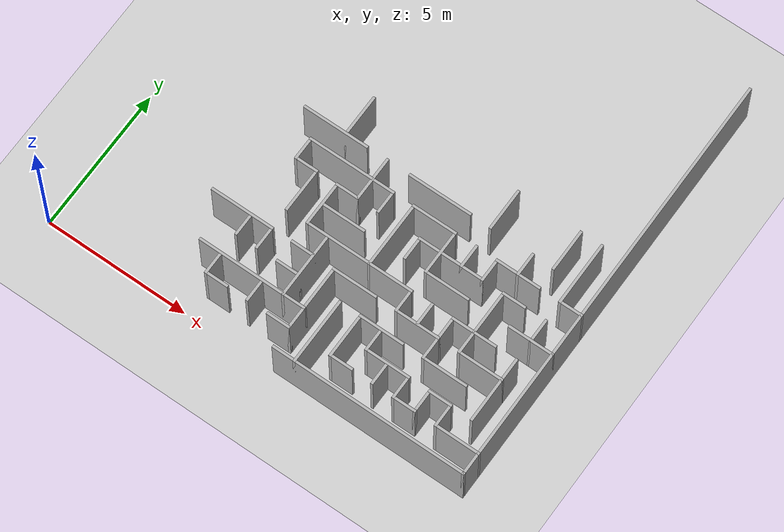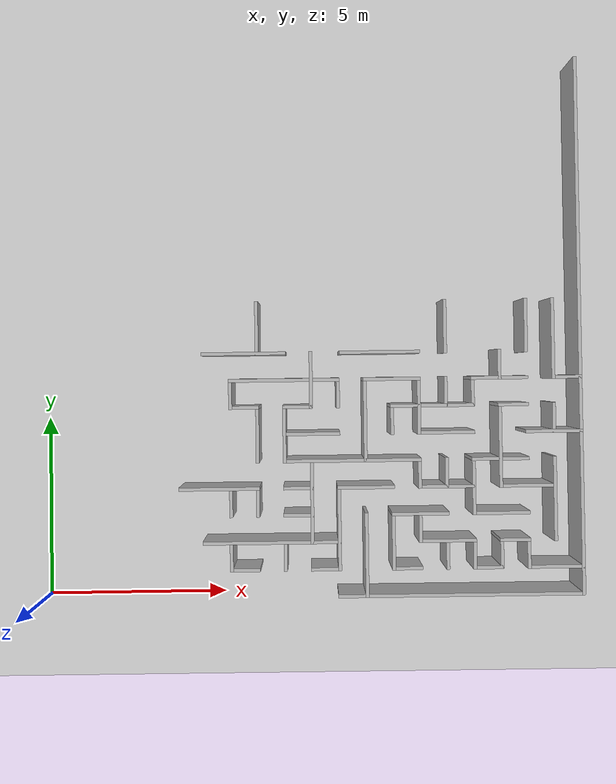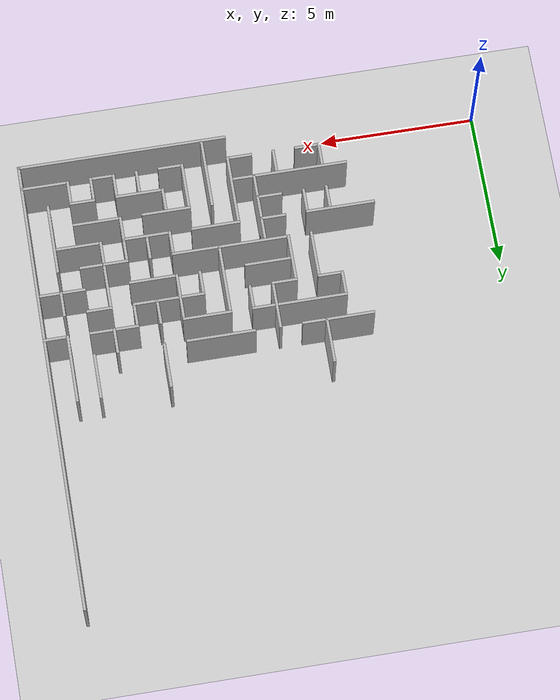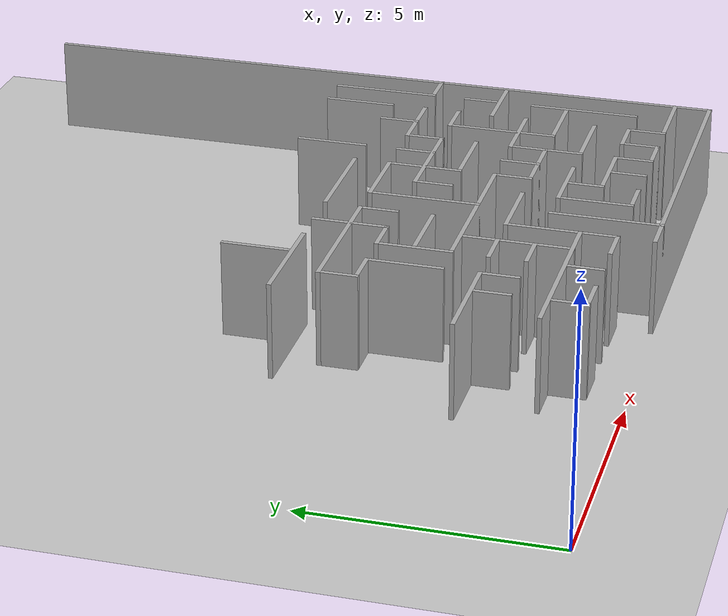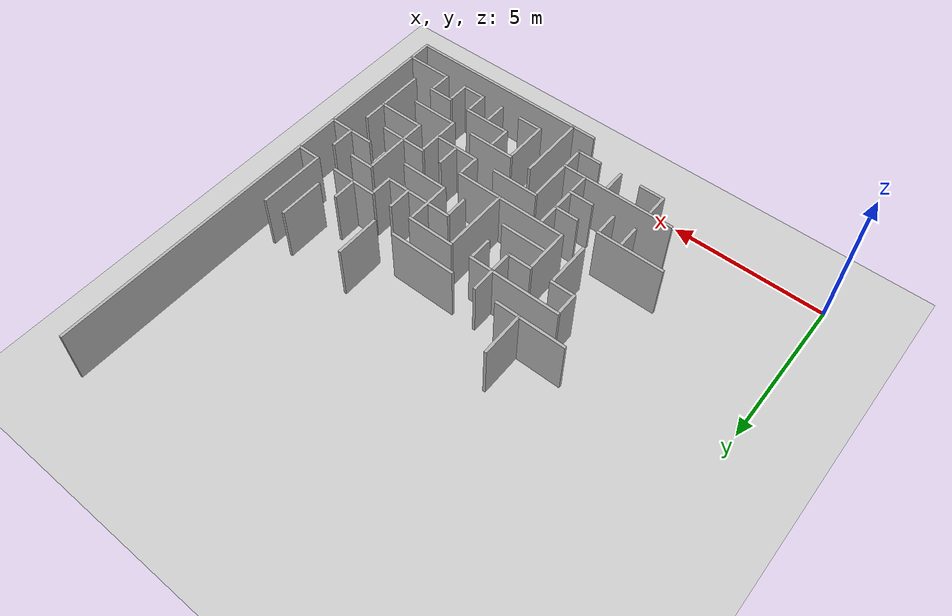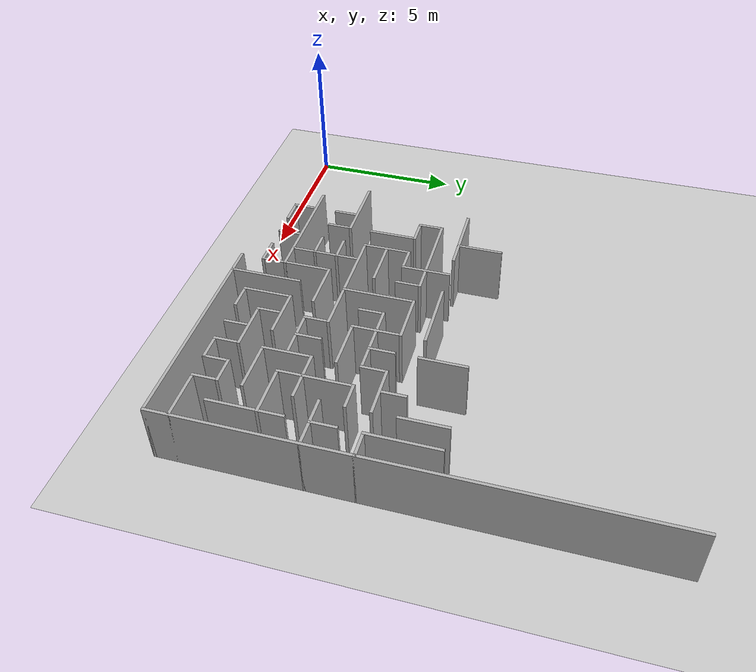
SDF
<sdf version="1.6">
 <world name="slam_world">
  <model name="ground_plane">
   <static>true</static>
   <link name="link">
    <collision name="collision">
     <geometry><plane><normal>0 0 1</normal><size>100 100</size></plane></geometry>
    </collision>
    <visual name="visual">
     <geometry><plane><normal>0 0 1</normal><size>100 100</size></plane></geometry>
     <material>
      <ambient>0.8 0.8 0.8 1</ambient>
      <diffuse>0.8 0.8 0.8 1</diffuse>
      <specular>0.8 0.8 0.8 1</specular>
     </material>
    </visual>
   </link>
  </model>
  <model name="wall_10">
   <static>true</static>
   <pose>14.907407407407408 7.453703703703704 1.0 0 0 0</pose>
   <link name="link">
    <collision name="collision">
     <geometry><box><size>0.0925925925925926 14.814814814814817 2.0</size></box></geometry>
    </collision>
    <visual name="visual">
     <geometry><box><size>0.0925925925925926 14.814814814814817 2.0</size></box></geometry>
     <material><ambient>0.5 0.5 0.5 1</ambient><diffuse>0.7 0.7 0.7 1</diffuse></material>
    </visual>
   </link>
  </model>
  <model name="wall_101">
   <static>true</static>
   <pose>6.018518518518519 7.453703703703704 1.0 0 0 0</pose>
   <link name="link">
    <collision name="collision">
     <geometry><box><size>0.0925925925925926 1.4814814814814816 2.0</size></box></geometry>
    </collision>
    <visual name="visual">
     <geometry><box><size>0.0925925925925926 1.4814814814814816 2.0</size></box></geometry>
     <material><ambient>0.5 0.5 0.5 1</ambient><diffuse>0.7 0.7 0.7 1</diffuse></material>
    </visual>
   </link>
  </model>
  <model name="wall_102">
   <static>true</static>
   <pose>11.203703703703704 7.453703703703704 1.0 0 0 0</pose>
   <link name="link">
    <collision name="collision">
     <geometry><box><size>0.0925925925925926 1.4814814814814816 2.0</size></box></geometry>
    </collision>
    <visual name="visual">
     <geometry><box><size>0.0925925925925926 1.4814814814814816 2.0</size></box></geometry>
     <material><ambient>0.5 0.5 0.5 1</ambient><diffuse>0.7 0.7 0.7 1</diffuse></material>
    </visual>
   </link>
  </model>
  <model name="wall_103">
   <static>true</static>
   <pose>13.425925925925927 7.453703703703704 1.0 0 0 0</pose>
   <link name="link">
    <collision name="collision">
     <geometry><box><size>0.0925925925925926 1.4814814814814816 2.0</size></box></geometry>
    </collision>
    <visual name="visual">
     <geometry><box><size>0.0925925925925926 1.4814814814814816 2.0</size></box></geometry>
     <material><ambient>0.5 0.5 0.5 1</ambient><diffuse>0.7 0.7 0.7 1</diffuse></material>
    </visual>
   </link>
  </model>
  <model name="wall_104">
   <static>true</static>
   <pose>14.166666666666668 7.083333333333334 1.0 0 0 0</pose>
   <link name="link">
    <collision name="collision">
     <geometry><box><size>0.0925925925925926 2.2222222222222223 2.0</size></box></geometry>
    </collision>
    <visual name="visual">
     <geometry><box><size>0.0925925925925926 2.2222222222222223 2.0</size></box></geometry>
     <material><ambient>0.5 0.5 0.5 1</ambient><diffuse>0.7 0.7 0.7 1</diffuse></material>
    </visual>
   </link>
  </model>
  <model name="wall_113">
   <static>true</static>
   <pose>5.648148148148149 6.7592592592592595 1.0 0 0 0</pose>
   <link name="link">
    <collision name="collision">
     <geometry><box><size>2.314814814814815 0.0925925925925926 2.0</size></box></geometry>
    </collision>
    <visual name="visual">
     <geometry><box><size>2.314814814814815 0.0925925925925926 2.0</size></box></geometry>
     <material><ambient>0.5 0.5 0.5 1</ambient><diffuse>0.7 0.7 0.7 1</diffuse></material>
    </visual>
   </link>
  </model>
  <model name="wall_114">
   <static>true</static>
   <pose>7.500000000000001 6.018518518518519 1.0 0 0 0</pose>
   <link name="link">
    <collision name="collision">
     <geometry><box><size>0.0925925925925926 1.5740740740740742 2.0</size></box></geometry>
    </collision>
    <visual name="visual">
     <geometry><box><size>0.0925925925925926 1.5740740740740742 2.0</size></box></geometry>
     <material><ambient>0.5 0.5 0.5 1</ambient><diffuse>0.7 0.7 0.7 1</diffuse></material>
    </visual>
   </link>
  </model>
  <model name="wall_115">
   <static>true</static>
   <pose>9.398148148148149 6.7592592592592595 1.0 0 0 0</pose>
   <link name="link">
    <collision name="collision">
     <geometry><box><size>2.2222222222222223 0.0925925925925926 2.0</size></box></geometry>
    </collision>
    <visual name="visual">
     <geometry><box><size>2.2222222222222223 0.0925925925925926 2.0</size></box></geometry>
     <material><ambient>0.5 0.5 0.5 1</ambient><diffuse>0.7 0.7 0.7 1</diffuse></material>
    </visual>
   </link>
  </model>
  <model name="wall_116">
   <static>true</static>
   <pose>12.685185185185187 6.388888888888889 1.0 0 0 0</pose>
   <link name="link">
    <collision name="collision">
     <geometry><box><size>0.0925925925925926 0.8333333333333334 2.0</size></box></geometry>
    </collision>
    <visual name="visual">
     <geometry><box><size>0.0925925925925926 0.8333333333333334 2.0</size></box></geometry>
     <material><ambient>0.5 0.5 0.5 1</ambient><diffuse>0.7 0.7 0.7 1</diffuse></material>
    </visual>
   </link>
  </model>
  <model name="wall_121">
   <static>true</static>
   <pose>6.7592592592592595 6.018518518518519 1.0 0 0 0</pose>
   <link name="link">
    <collision name="collision">
     <geometry><box><size>3.055555555555556 0.0925925925925926 2.0</size></box></geometry>
    </collision>
    <visual name="visual">
     <geometry><box><size>3.055555555555556 0.0925925925925926 2.0</size></box></geometry>
     <material><ambient>0.5 0.5 0.5 1</ambient><diffuse>0.7 0.7 0.7 1</diffuse></material>
    </visual>
   </link>
  </model>
  <model name="wall_122">
   <static>true</static>
   <pose>9.722222222222223 6.018518518518519 1.0 0 0 0</pose>
   <link name="link">
    <collision name="collision">
     <geometry><box><size>1.5740740740740742 0.0925925925925926 2.0</size></box></geometry>
    </collision>
    <visual name="visual">
     <geometry><box><size>1.5740740740740742 0.0925925925925926 2.0</size></box></geometry>
     <material><ambient>0.5 0.5 0.5 1</ambient><diffuse>0.7 0.7 0.7 1</diffuse></material>
    </visual>
   </link>
  </model>
  <model name="wall_123">
   <static>true</static>
   <pose>11.203703703703704 5.648148148148149 1.0 0 0 0</pose>
   <link name="link">
    <collision name="collision">
     <geometry><box><size>0.0925925925925926 0.8333333333333334 2.0</size></box></geometry>
    </collision>
    <visual name="visual">
     <geometry><box><size>0.0925925925925926 0.8333333333333334 2.0</size></box></geometry>
     <material><ambient>0.5 0.5 0.5 1</ambient><diffuse>0.7 0.7 0.7 1</diffuse></material>
    </visual>
   </link>
  </model>
  <model name="wall_124">
   <static>true</static>
   <pose>12.685185185185187 6.018518518518519 1.0 0 0 0</pose>
   <link name="link">
    <collision name="collision">
     <geometry><box><size>1.5740740740740742 0.0925925925925926 2.0</size></box></geometry>
    </collision>
    <visual name="visual">
     <geometry><box><size>1.5740740740740742 0.0925925925925926 2.0</size></box></geometry>
     <material><ambient>0.5 0.5 0.5 1</ambient><diffuse>0.7 0.7 0.7 1</diffuse></material>
    </visual>
   </link>
  </model>
  <model name="wall_125">
   <static>true</static>
   <pose>14.583333333333334 6.018518518518519 1.0 0 0 0</pose>
   <link name="link">
    <collision name="collision">
     <geometry><box><size>0.7407407407407408 0.0925925925925926 2.0</size></box></geometry>
    </collision>
    <visual name="visual">
     <geometry><box><size>0.7407407407407408 0.0925925925925926 2.0</size></box></geometry>
     <material><ambient>0.5 0.5 0.5 1</ambient><diffuse>0.7 0.7 0.7 1</diffuse></material>
    </visual>
   </link>
  </model>
  <model name="wall_127">
   <static>true</static>
   <pose>5.277777777777779 5.601851851851852 1.0 0 0 0</pose>
   <link name="link">
    <collision name="collision">
     <geometry><box><size>0.0925925925925926 0.7407407407407408 2.0</size></box></geometry>
    </collision>
    <visual name="visual">
     <geometry><box><size>0.0925925925925926 0.7407407407407408 2.0</size></box></geometry>
     <material><ambient>0.5 0.5 0.5 1</ambient><diffuse>0.7 0.7 0.7 1</diffuse></material>
    </visual>
   </link>
  </model>
  <model name="wall_128">
   <static>true</static>
   <pose>8.240740740740742 5.601851851851852 1.0 0 0 0</pose>
   <link name="link">
    <collision name="collision">
     <geometry><box><size>0.0925925925925926 0.7407407407407408 2.0</size></box></geometry>
    </collision>
    <visual name="visual">
     <geometry><box><size>0.0925925925925926 0.7407407407407408 2.0</size></box></geometry>
     <material><ambient>0.5 0.5 0.5 1</ambient><diffuse>0.7 0.7 0.7 1</diffuse></material>
    </visual>
   </link>
  </model>
  <model name="wall_129">
   <static>true</static>
   <pose>8.981481481481483 4.861111111111112 1.0 0 0 0</pose>
   <link name="link">
    <collision name="collision">
     <geometry><box><size>0.0925925925925926 2.2222222222222223 2.0</size></box></geometry>
    </collision>
    <visual name="visual">
     <geometry><box><size>0.0925925925925926 2.2222222222222223 2.0</size></box></geometry>
     <material><ambient>0.5 0.5 0.5 1</ambient><diffuse>0.7 0.7 0.7 1</diffuse></material>
    </visual>
   </link>
  </model>
  <model name="wall_130">
   <static>true</static>
   <pose>10.462962962962964 5.231481481481482 1.0 0 0 0</pose>
   <link name="link">
    <collision name="collision">
     <geometry><box><size>0.0925925925925926 1.4814814814814816 2.0</size></box></geometry>
    </collision>
    <visual name="visual">
     <geometry><box><size>0.0925925925925926 1.4814814814814816 2.0</size></box></geometry>
     <material><ambient>0.5 0.5 0.5 1</ambient><diffuse>0.7 0.7 0.7 1</diffuse></material>
    </visual>
   </link>
  </model>
  <model name="wall_131">
   <static>true</static>
   <pose>11.944444444444446 5.601851851851852 1.0 0 0 0</pose>
   <link name="link">
    <collision name="collision">
     <geometry><box><size>0.0925925925925926 0.7407407407407408 2.0</size></box></geometry>
    </collision>
    <visual name="visual">
     <geometry><box><size>0.0925925925925926 0.7407407407407408 2.0</size></box></geometry>
     <material><ambient>0.5 0.5 0.5 1</ambient><diffuse>0.7 0.7 0.7 1</diffuse></material>
    </visual>
   </link>
  </model>
  <model name="wall_135">
   <static>true</static>
   <pose>5.694444444444445 5.277777777777779 1.0 0 0 0</pose>
   <link name="link">
    <collision name="collision">
     <geometry><box><size>0.7407407407407408 0.0925925925925926 2.0</size></box></geometry>
    </collision>
    <visual name="visual">
     <geometry><box><size>0.7407407407407408 0.0925925925925926 2.0</size></box></geometry>
     <material><ambient>0.5 0.5 0.5 1</ambient><diffuse>0.7 0.7 0.7 1</diffuse></material>
    </visual>
   </link>
  </model>
  <model name="wall_136">
   <static>true</static>
   <pose>7.129629629629631 5.277777777777779 1.0 0 0 0</pose>
   <link name="link">
    <collision name="collision">
     <geometry><box><size>0.8333333333333334 0.0925925925925926 2.0</size></box></geometry>
    </collision>
    <visual name="visual">
     <geometry><box><size>0.8333333333333334 0.0925925925925926 2.0</size></box></geometry>
     <material><ambient>0.5 0.5 0.5 1</ambient><diffuse>0.7 0.7 0.7 1</diffuse></material>
    </visual>
   </link>
  </model>
  <model name="wall_137">
   <static>true</static>
   <pose>10.833333333333334 5.277777777777779 1.0 0 0 0</pose>
   <link name="link">
    <collision name="collision">
     <geometry><box><size>2.314814814814815 0.0925925925925926 2.0</size></box></geometry>
    </collision>
    <visual name="visual">
     <geometry><box><size>2.314814814814815 0.0925925925925926 2.0</size></box></geometry>
     <material><ambient>0.5 0.5 0.5 1</ambient><diffuse>0.7 0.7 0.7 1</diffuse></material>
    </visual>
   </link>
  </model>
  <model name="wall_138">
   <static>true</static>
   <pose>13.055555555555557 5.277777777777779 1.0 0 0 0</pose>
   <link name="link">
    <collision name="collision">
     <geometry><box><size>0.8333333333333334 0.0925925925925926 2.0</size></box></geometry>
    </collision>
    <visual name="visual">
     <geometry><box><size>0.8333333333333334 0.0925925925925926 2.0</size></box></geometry>
     <material><ambient>0.5 0.5 0.5 1</ambient><diffuse>0.7 0.7 0.7 1</diffuse></material>
    </visual>
   </link>
  </model>
  <model name="wall_139">
   <static>true</static>
   <pose>14.166666666666668 4.907407407407407 1.0 0 0 0</pose>
   <link name="link">
    <collision name="collision">
     <geometry><box><size>0.0925925925925926 0.8333333333333334 2.0</size></box></geometry>
    </collision>
    <visual name="visual">
     <geometry><box><size>0.0925925925925926 0.8333333333333334 2.0</size></box></geometry>
     <material><ambient>0.5 0.5 0.5 1</ambient><diffuse>0.7 0.7 0.7 1</diffuse></material>
    </visual>
   </link>
  </model>
  <model name="wall_141">
   <static>true</static>
   <pose>6.018518518518519 4.490740740740741 1.0 0 0 0</pose>
   <link name="link">
    <collision name="collision">
     <geometry><box><size>0.0925925925925926 1.4814814814814816 2.0</size></box></geometry>
    </collision>
    <visual name="visual">
     <geometry><box><size>0.0925925925925926 1.4814814814814816 2.0</size></box></geometry>
     <material><ambient>0.5 0.5 0.5 1</ambient><diffuse>0.7 0.7 0.7 1</diffuse></material>
    </visual>
   </link>
  </model>
  <model name="wall_142">
   <static>true</static>
   <pose>6.7592592592592595 4.490740740740741 1.0 0 0 0</pose>
   <link name="link">
    <collision name="collision">
     <geometry><box><size>0.0925925925925926 1.4814814814814816 2.0</size></box></geometry>
    </collision>
    <visual name="visual">
     <geometry><box><size>0.0925925925925926 1.4814814814814816 2.0</size></box></geometry>
     <material><ambient>0.5 0.5 0.5 1</ambient><diffuse>0.7 0.7 0.7 1</diffuse></material>
    </visual>
   </link>
  </model>
  <model name="wall_143">
   <static>true</static>
   <pose>9.722222222222223 4.861111111111112 1.0 0 0 0</pose>
   <link name="link">
    <collision name="collision">
     <geometry><box><size>0.0925925925925926 0.7407407407407408 2.0</size></box></geometry>
    </collision>
    <visual name="visual">
     <geometry><box><size>0.0925925925925926 0.7407407407407408 2.0</size></box></geometry>
     <material><ambient>0.5 0.5 0.5 1</ambient><diffuse>0.7 0.7 0.7 1</diffuse></material>
    </visual>
   </link>
  </model>
  <model name="wall_144">
   <static>true</static>
   <pose>12.685185185185187 4.120370370370371 1.0 0 0 0</pose>
   <link name="link">
    <collision name="collision">
     <geometry><box><size>0.0925925925925926 2.2222222222222223 2.0</size></box></geometry>
    </collision>
    <visual name="visual">
     <geometry><box><size>0.0925925925925926 2.2222222222222223 2.0</size></box></geometry>
     <material><ambient>0.5 0.5 0.5 1</ambient><diffuse>0.7 0.7 0.7 1</diffuse></material>
    </visual>
   </link>
  </model>
  <model name="wall_148">
   <static>true</static>
   <pose>7.546296296296297 4.537037037037037 1.0 0 0 0</pose>
   <link name="link">
    <collision name="collision">
     <geometry><box><size>1.4814814814814816 0.0925925925925926 2.0</size></box></geometry>
    </collision>
    <visual name="visual">
     <geometry><box><size>1.4814814814814816 0.0925925925925926 2.0</size></box></geometry>
     <material><ambient>0.5 0.5 0.5 1</ambient><diffuse>0.7 0.7 0.7 1</diffuse></material>
    </visual>
   </link>
  </model>
  <model name="wall_149">
   <static>true</static>
   <pose>11.250000000000002 4.537037037037037 1.0 0 0 0</pose>
   <link name="link">
    <collision name="collision">
     <geometry><box><size>1.4814814814814816 0.0925925925925926 2.0</size></box></geometry>
    </collision>
    <visual name="visual">
     <geometry><box><size>1.4814814814814816 0.0925925925925926 2.0</size></box></geometry>
     <material><ambient>0.5 0.5 0.5 1</ambient><diffuse>0.7 0.7 0.7 1</diffuse></material>
    </visual>
   </link>
  </model>
  <model name="wall_150">
   <static>true</static>
   <pose>14.166666666666668 4.537037037037037 1.0 0 0 0</pose>
   <link name="link">
    <collision name="collision">
     <geometry><box><size>1.5740740740740742 0.0925925925925926 2.0</size></box></geometry>
    </collision>
    <visual name="visual">
     <geometry><box><size>1.5740740740740742 0.0925925925925926 2.0</size></box></geometry>
     <material><ambient>0.5 0.5 0.5 1</ambient><diffuse>0.7 0.7 0.7 1</diffuse></material>
    </visual>
   </link>
  </model>
  <model name="wall_153">
   <static>true</static>
   <pose>8.657407407407408 3.7962962962962967 1.0 0 0 0</pose>
   <link name="link">
    <collision name="collision">
     <geometry><box><size>3.703703703703704 0.0925925925925926 2.0</size></box></geometry>
    </collision>
    <visual name="visual">
     <geometry><box><size>3.703703703703704 0.0925925925925926 2.0</size></box></geometry>
     <material><ambient>0.5 0.5 0.5 1</ambient><diffuse>0.7 0.7 0.7 1</diffuse></material>
    </visual>
   </link>
  </model>
  <model name="wall_154">
   <static>true</static>
   <pose>11.203703703703704 3.425925925925926 1.0 0 0 0</pose>
   <link name="link">
    <collision name="collision">
     <geometry><box><size>0.0925925925925926 0.8333333333333334 2.0</size></box></geometry>
    </collision>
    <visual name="visual">
     <geometry><box><size>0.0925925925925926 0.8333333333333334 2.0</size></box></geometry>
     <material><ambient>0.5 0.5 0.5 1</ambient><diffuse>0.7 0.7 0.7 1</diffuse></material>
    </visual>
   </link>
  </model>
  <model name="wall_155">
   <static>true</static>
   <pose>12.685185185185187 3.7962962962962967 1.0 0 0 0</pose>
   <link name="link">
    <collision name="collision">
     <geometry><box><size>1.5740740740740742 0.0925925925925926 2.0</size></box></geometry>
    </collision>
    <visual name="visual">
     <geometry><box><size>1.5740740740740742 0.0925925925925926 2.0</size></box></geometry>
     <material><ambient>0.5 0.5 0.5 1</ambient><diffuse>0.7 0.7 0.7 1</diffuse></material>
    </visual>
   </link>
  </model>
  <model name="wall_156">
   <static>true</static>
   <pose>14.166666666666668 2.6851851851851856 1.0 0 0 0</pose>
   <link name="link">
    <collision name="collision">
     <geometry><box><size>0.0925925925925926 2.314814814814815 2.0</size></box></geometry>
    </collision>
    <visual name="visual">
     <geometry><box><size>0.0925925925925926 2.314814814814815 2.0</size></box></geometry>
     <material><ambient>0.5 0.5 0.5 1</ambient><diffuse>0.7 0.7 0.7 1</diffuse></material>
    </visual>
   </link>
  </model>
  <model name="wall_158">
   <static>true</static>
   <pose>7.500000000000001 2.6388888888888893 1.0 0 0 0</pose>
   <link name="link">
    <collision name="collision">
     <geometry><box><size>0.0925925925925926 2.2222222222222223 2.0</size></box></geometry>
    </collision>
    <visual name="visual">
     <geometry><box><size>0.0925925925925926 2.2222222222222223 2.0</size></box></geometry>
     <material><ambient>0.5 0.5 0.5 1</ambient><diffuse>0.7 0.7 0.7 1</diffuse></material>
    </visual>
   </link>
  </model>
  <model name="wall_159">
   <static>true</static>
   <pose>10.462962962962964 3.3796296296296298 1.0 0 0 0</pose>
   <link name="link">
    <collision name="collision">
     <geometry><box><size>0.0925925925925926 0.7407407407407408 2.0</size></box></geometry>
    </collision>
    <visual name="visual">
     <geometry><box><size>0.0925925925925926 0.7407407407407408 2.0</size></box></geometry>
     <material><ambient>0.5 0.5 0.5 1</ambient><diffuse>0.7 0.7 0.7 1</diffuse></material>
    </visual>
   </link>
  </model>
  <model name="wall_160">
   <static>true</static>
   <pose>11.944444444444446 3.0092592592592595 1.0 0 0 0</pose>
   <link name="link">
    <collision name="collision">
     <geometry><box><size>0.0925925925925926 1.4814814814814816 2.0</size></box></geometry>
    </collision>
    <visual name="visual">
     <geometry><box><size>0.0925925925925926 1.4814814814814816 2.0</size></box></geometry>
     <material><ambient>0.5 0.5 0.5 1</ambient><diffuse>0.7 0.7 0.7 1</diffuse></material>
    </visual>
   </link>
  </model>
  <model name="wall_163">
   <static>true</static>
   <pose>4.953703703703704 3.055555555555556 1.0 0 0 0</pose>
   <link name="link">
    <collision name="collision">
     <geometry><box><size>2.2222222222222223 0.0925925925925926 2.0</size></box></geometry>
    </collision>
    <visual name="visual">
     <geometry><box><size>2.2222222222222223 0.0925925925925926 2.0</size></box></geometry>
     <material><ambient>0.5 0.5 0.5 1</ambient><diffuse>0.7 0.7 0.7 1</diffuse></material>
    </visual>
   </link>
  </model>
  <model name="wall_164">
   <static>true</static>
   <pose>7.129629629629631 3.055555555555556 1.0 0 0 0</pose>
   <link name="link">
    <collision name="collision">
     <geometry><box><size>0.8333333333333334 0.0925925925925926 2.0</size></box></geometry>
    </collision>
    <visual name="visual">
     <geometry><box><size>0.8333333333333334 0.0925925925925926 2.0</size></box></geometry>
     <material><ambient>0.5 0.5 0.5 1</ambient><diffuse>0.7 0.7 0.7 1</diffuse></material>
    </visual>
   </link>
  </model>
  <model name="wall_165">
   <static>true</static>
   <pose>8.981481481481483 3.055555555555556 1.0 0 0 0</pose>
   <link name="link">
    <collision name="collision">
     <geometry><box><size>1.5740740740740742 0.0925925925925926 2.0</size></box></geometry>
    </collision>
    <visual name="visual">
     <geometry><box><size>1.5740740740740742 0.0925925925925926 2.0</size></box></geometry>
     <material><ambient>0.5 0.5 0.5 1</ambient><diffuse>0.7 0.7 0.7 1</diffuse></material>
    </visual>
   </link>
  </model>
  <model name="wall_166">
   <static>true</static>
   <pose>11.250000000000002 3.055555555555556 1.0 0 0 0</pose>
   <link name="link">
    <collision name="collision">
     <geometry><box><size>1.4814814814814816 0.0925925925925926 2.0</size></box></geometry>
    </collision>
    <visual name="visual">
     <geometry><box><size>1.4814814814814816 0.0925925925925926 2.0</size></box></geometry>
     <material><ambient>0.5 0.5 0.5 1</ambient><diffuse>0.7 0.7 0.7 1</diffuse></material>
    </visual>
   </link>
  </model>
  <model name="wall_167">
   <static>true</static>
   <pose>13.472222222222223 3.055555555555556 1.0 0 0 0</pose>
   <link name="link">
    <collision name="collision">
     <geometry><box><size>1.4814814814814816 0.0925925925925926 2.0</size></box></geometry>
    </collision>
    <visual name="visual">
     <geometry><box><size>1.4814814814814816 0.0925925925925926 2.0</size></box></geometry>
     <material><ambient>0.5 0.5 0.5 1</ambient><diffuse>0.7 0.7 0.7 1</diffuse></material>
    </visual>
   </link>
  </model>
  <model name="wall_168">
   <static>true</static>
   <pose>5.277777777777779 2.6388888888888893 1.0 0 0 0</pose>
   <link name="link">
    <collision name="collision">
     <geometry><box><size>0.0925925925925926 0.7407407407407408 2.0</size></box></geometry>
    </collision>
    <visual name="visual">
     <geometry><box><size>0.0925925925925926 0.7407407407407408 2.0</size></box></geometry>
     <material><ambient>0.5 0.5 0.5 1</ambient><diffuse>0.7 0.7 0.7 1</diffuse></material>
    </visual>
   </link>
  </model>
  <model name="wall_169">
   <static>true</static>
   <pose>6.018518518518519 2.6388888888888893 1.0 0 0 0</pose>
   <link name="link">
    <collision name="collision">
     <geometry><box><size>0.0925925925925926 0.7407407407407408 2.0</size></box></geometry>
    </collision>
    <visual name="visual">
     <geometry><box><size>0.0925925925925926 0.7407407407407408 2.0</size></box></geometry>
     <material><ambient>0.5 0.5 0.5 1</ambient><diffuse>0.7 0.7 0.7 1</diffuse></material>
    </visual>
   </link>
  </model>
  <model name="wall_170">
   <static>true</static>
   <pose>8.240740740740742 1.8981481481481484 1.0 0 0 0</pose>
   <link name="link">
    <collision name="collision">
     <geometry><box><size>0.0925925925925926 2.2222222222222223 2.0</size></box></geometry>
    </collision>
    <visual name="visual">
     <geometry><box><size>0.0925925925925926 2.2222222222222223 2.0</size></box></geometry>
     <material><ambient>0.5 0.5 0.5 1</ambient><diffuse>0.7 0.7 0.7 1</diffuse></material>
    </visual>
   </link>
  </model>
  <model name="wall_173">
   <static>true</static>
   <pose>7.129629629629631 2.314814814814815 1.0 0 0 0</pose>
   <link name="link">
    <collision name="collision">
     <geometry><box><size>0.8333333333333334 0.0925925925925926 2.0</size></box></geometry>
    </collision>
    <visual name="visual">
     <geometry><box><size>0.8333333333333334 0.0925925925925926 2.0</size></box></geometry>
     <material><ambient>0.5 0.5 0.5 1</ambient><diffuse>0.7 0.7 0.7 1</diffuse></material>
    </visual>
   </link>
  </model>
  <model name="wall_174">
   <static>true</static>
   <pose>8.981481481481483 1.2037037037037037 1.0 0 0 0</pose>
   <link name="link">
    <collision name="collision">
     <geometry><box><size>0.0925925925925926 2.314814814814815 2.0</size></box></geometry>
    </collision>
    <visual name="visual">
     <geometry><box><size>0.0925925925925926 2.314814814814815 2.0</size></box></geometry>
     <material><ambient>0.5 0.5 0.5 1</ambient><diffuse>0.7 0.7 0.7 1</diffuse></material>
    </visual>
   </link>
  </model>
  <model name="wall_175">
   <static>true</static>
   <pose>10.462962962962964 2.314814814814815 1.0 0 0 0</pose>
   <link name="link">
    <collision name="collision">
     <geometry><box><size>1.5740740740740742 0.0925925925925926 2.0</size></box></geometry>
    </collision>
    <visual name="visual">
     <geometry><box><size>1.5740740740740742 0.0925925925925926 2.0</size></box></geometry>
     <material><ambient>0.5 0.5 0.5 1</ambient><diffuse>0.7 0.7 0.7 1</diffuse></material>
    </visual>
   </link>
  </model>
  <model name="wall_176">
   <static>true</static>
   <pose>12.731481481481483 2.314814814814815 1.0 0 0 0</pose>
   <link name="link">
    <collision name="collision">
     <geometry><box><size>1.4814814814814816 0.0925925925925926 2.0</size></box></geometry>
    </collision>
    <visual name="visual">
     <geometry><box><size>1.4814814814814816 0.0925925925925926 2.0</size></box></geometry>
     <material><ambient>0.5 0.5 0.5 1</ambient><diffuse>0.7 0.7 0.7 1</diffuse></material>
    </visual>
   </link>
  </model>
  <model name="wall_178">
   <static>true</static>
   <pose>9.722222222222223 1.527777777777778 1.0 0 0 0</pose>
   <link name="link">
    <collision name="collision">
     <geometry><box><size>0.0925925925925926 1.4814814814814816 2.0</size></box></geometry>
    </collision>
    <visual name="visual">
     <geometry><box><size>0.0925925925925926 1.4814814814814816 2.0</size></box></geometry>
     <material><ambient>0.5 0.5 0.5 1</ambient><diffuse>0.7 0.7 0.7 1</diffuse></material>
    </visual>
   </link>
  </model>
  <model name="wall_179">
   <static>true</static>
   <pose>10.462962962962964 1.8981481481481484 1.0 0 0 0</pose>
   <link name="link">
    <collision name="collision">
     <geometry><box><size>0.0925925925925926 0.7407407407407408 2.0</size></box></geometry>
    </collision>
    <visual name="visual">
     <geometry><box><size>0.0925925925925926 0.7407407407407408 2.0</size></box></geometry>
     <material><ambient>0.5 0.5 0.5 1</ambient><diffuse>0.7 0.7 0.7 1</diffuse></material>
    </visual>
   </link>
  </model>
  <model name="wall_182">
   <static>true</static>
   <pose>6.388888888888889 1.5740740740740742 1.0 0 0 0</pose>
   <link name="link">
    <collision name="collision">
     <geometry><box><size>3.7962962962962967 0.0925925925925926 2.0</size></box></geometry>
    </collision>
    <visual name="visual">
     <geometry><box><size>3.7962962962962967 0.0925925925925926 2.0</size></box></geometry>
     <material><ambient>0.5 0.5 0.5 1</ambient><diffuse>0.7 0.7 0.7 1</diffuse></material>
    </visual>
   </link>
  </model>
  <model name="wall_183">
   <static>true</static>
   <pose>11.250000000000002 1.5740740740740742 1.0 0 0 0</pose>
   <link name="link">
    <collision name="collision">
     <geometry><box><size>1.4814814814814816 0.0925925925925926 2.0</size></box></geometry>
    </collision>
    <visual name="visual">
     <geometry><box><size>1.4814814814814816 0.0925925925925926 2.0</size></box></geometry>
     <material><ambient>0.5 0.5 0.5 1</ambient><diffuse>0.7 0.7 0.7 1</diffuse></material>
    </visual>
   </link>
  </model>
  <model name="wall_184">
   <static>true</static>
   <pose>13.055555555555557 1.5740740740740742 1.0 0 0 0</pose>
   <link name="link">
    <collision name="collision">
     <geometry><box><size>0.8333333333333334 0.0925925925925926 2.0</size></box></geometry>
    </collision>
    <visual name="visual">
     <geometry><box><size>0.8333333333333334 0.0925925925925926 2.0</size></box></geometry>
     <material><ambient>0.5 0.5 0.5 1</ambient><diffuse>0.7 0.7 0.7 1</diffuse></material>
    </visual>
   </link>
  </model>
  <model name="wall_187">
   <static>true</static>
   <pose>5.277777777777779 1.1574074074074074 1.0 0 0 0</pose>
   <link name="link">
    <collision name="collision">
     <geometry><box><size>0.0925925925925926 0.7407407407407408 2.0</size></box></geometry>
    </collision>
    <visual name="visual">
     <geometry><box><size>0.0925925925925926 0.7407407407407408 2.0</size></box></geometry>
     <material><ambient>0.5 0.5 0.5 1</ambient><diffuse>0.7 0.7 0.7 1</diffuse></material>
    </visual>
   </link>
  </model>
  <model name="wall_188">
   <static>true</static>
   <pose>6.7592592592592595 1.1574074074074074 1.0 0 0 0</pose>
   <link name="link">
    <collision name="collision">
     <geometry><box><size>0.0925925925925926 0.7407407407407408 2.0</size></box></geometry>
    </collision>
    <visual name="visual">
     <geometry><box><size>0.0925925925925926 0.7407407407407408 2.0</size></box></geometry>
     <material><ambient>0.5 0.5 0.5 1</ambient><diffuse>0.7 0.7 0.7 1</diffuse></material>
    </visual>
   </link>
  </model>
  <model name="wall_189">
   <static>true</static>
   <pose>11.203703703703704 1.1574074074074074 1.0 0 0 0</pose>
   <link name="link">
    <collision name="collision">
     <geometry><box><size>0.0925925925925926 0.7407407407407408 2.0</size></box></geometry>
    </collision>
    <visual name="visual">
     <geometry><box><size>0.0925925925925926 0.7407407407407408 2.0</size></box></geometry>
     <material><ambient>0.5 0.5 0.5 1</ambient><diffuse>0.7 0.7 0.7 1</diffuse></material>
    </visual>
   </link>
  </model>
  <model name="wall_190">
   <static>true</static>
   <pose>11.944444444444446 1.1574074074074074 1.0 0 0 0</pose>
   <link name="link">
    <collision name="collision">
     <geometry><box><size>0.0925925925925926 0.7407407407407408 2.0</size></box></geometry>
    </collision>
    <visual name="visual">
     <geometry><box><size>0.0925925925925926 0.7407407407407408 2.0</size></box></geometry>
     <material><ambient>0.5 0.5 0.5 1</ambient><diffuse>0.7 0.7 0.7 1</diffuse></material>
    </visual>
   </link>
  </model>
  <model name="wall_191">
   <static>true</static>
   <pose>12.685185185185187 1.1574074074074074 1.0 0 0 0</pose>
   <link name="link">
    <collision name="collision">
     <geometry><box><size>0.0925925925925926 0.7407407407407408 2.0</size></box></geometry>
    </collision>
    <visual name="visual">
     <geometry><box><size>0.0925925925925926 0.7407407407407408 2.0</size></box></geometry>
     <material><ambient>0.5 0.5 0.5 1</ambient><diffuse>0.7 0.7 0.7 1</diffuse></material>
    </visual>
   </link>
  </model>
  <model name="wall_192">
   <static>true</static>
   <pose>13.425925925925927 1.1574074074074074 1.0 0 0 0</pose>
   <link name="link">
    <collision name="collision">
     <geometry><box><size>0.0925925925925926 0.7407407407407408 2.0</size></box></geometry>
    </collision>
    <visual name="visual">
     <geometry><box><size>0.0925925925925926 0.7407407407407408 2.0</size></box></geometry>
     <material><ambient>0.5 0.5 0.5 1</ambient><diffuse>0.7 0.7 0.7 1</diffuse></material>
    </visual>
   </link>
  </model>
  <model name="wall_195">
   <static>true</static>
   <pose>5.694444444444445 0.8333333333333334 1.0 0 0 0</pose>
   <link name="link">
    <collision name="collision">
     <geometry><box><size>0.7407407407407408 0.0925925925925926 2.0</size></box></geometry>
    </collision>
    <visual name="visual">
     <geometry><box><size>0.7407407407407408 0.0925925925925926 2.0</size></box></geometry>
     <material><ambient>0.5 0.5 0.5 1</ambient><diffuse>0.7 0.7 0.7 1</diffuse></material>
    </visual>
   </link>
  </model>
  <model name="wall_196">
   <static>true</static>
   <pose>7.870370370370371 0.8333333333333334 1.0 0 0 0</pose>
   <link name="link">
    <collision name="collision">
     <geometry><box><size>0.8333333333333334 0.0925925925925926 2.0</size></box></geometry>
    </collision>
    <visual name="visual">
     <geometry><box><size>0.8333333333333334 0.0925925925925926 2.0</size></box></geometry>
     <material><ambient>0.5 0.5 0.5 1</ambient><diffuse>0.7 0.7 0.7 1</diffuse></material>
    </visual>
   </link>
  </model>
  <model name="wall_197">
   <static>true</static>
   <pose>10.13888888888889 0.8333333333333334 1.0 0 0 0</pose>
   <link name="link">
    <collision name="collision">
     <geometry><box><size>0.7407407407407408 0.0925925925925926 2.0</size></box></geometry>
    </collision>
    <visual name="visual">
     <geometry><box><size>0.7407407407407408 0.0925925925925926 2.0</size></box></geometry>
     <material><ambient>0.5 0.5 0.5 1</ambient><diffuse>0.7 0.7 0.7 1</diffuse></material>
    </visual>
   </link>
  </model>
  <model name="wall_198">
   <static>true</static>
   <pose>12.361111111111112 0.8333333333333334 1.0 0 0 0</pose>
   <link name="link">
    <collision name="collision">
     <geometry><box><size>0.7407407407407408 0.0925925925925926 2.0</size></box></geometry>
    </collision>
    <visual name="visual">
     <geometry><box><size>0.7407407407407408 0.0925925925925926 2.0</size></box></geometry>
     <material><ambient>0.5 0.5 0.5 1</ambient><diffuse>0.7 0.7 0.7 1</diffuse></material>
    </visual>
   </link>
  </model>
  <model name="wall_199">
   <static>true</static>
   <pose>14.212962962962964 0.8333333333333334 1.0 0 0 0</pose>
   <link name="link">
    <collision name="collision">
     <geometry><box><size>1.4814814814814816 0.0925925925925926 2.0</size></box></geometry>
    </collision>
    <visual name="visual">
     <geometry><box><size>1.4814814814814816 0.0925925925925926 2.0</size></box></geometry>
     <material><ambient>0.5 0.5 0.5 1</ambient><diffuse>0.7 0.7 0.7 1</diffuse></material>
    </visual>
   </link>
  </model>
  <model name="wall_201">
   <static>true</static>
   <pose>11.574074074074074 0.0925925925925926 1.0 0 0 0</pose>
   <link name="link">
    <collision name="collision">
     <geometry><box><size>6.7592592592592595 0.0925925925925926 2.0</size></box></geometry>
    </collision>
    <visual name="visual">
     <geometry><box><size>6.7592592592592595 0.0925925925925926 2.0</size></box></geometry>
     <material><ambient>0.5 0.5 0.5 1</ambient><diffuse>0.7 0.7 0.7 1</diffuse></material>
    </visual>
   </link>
  </model>
 </world>
</sdf>
